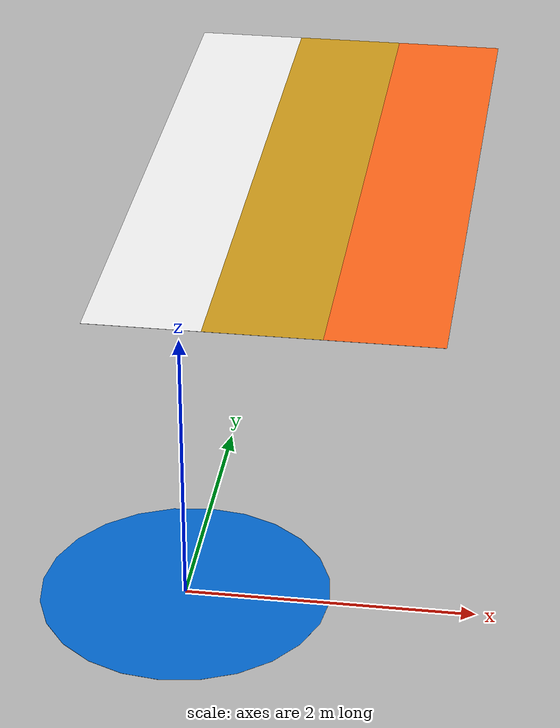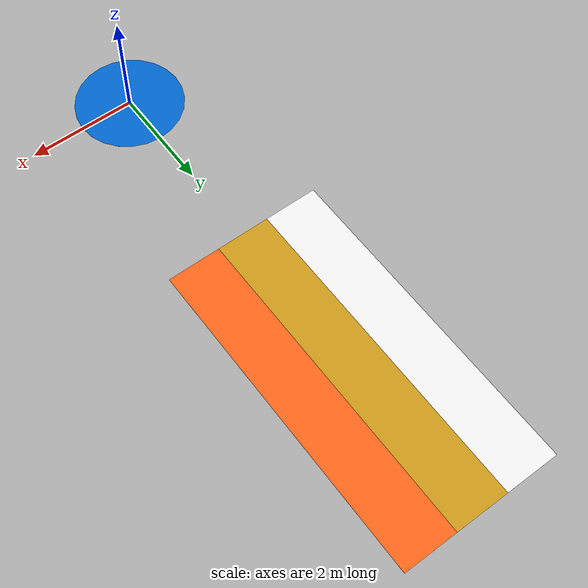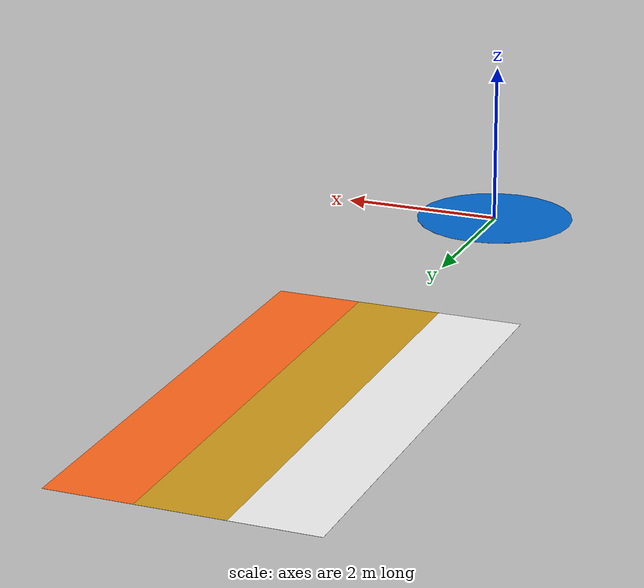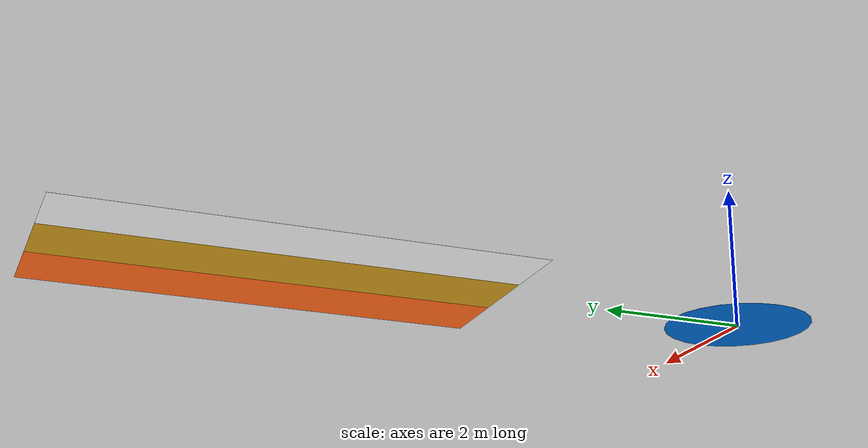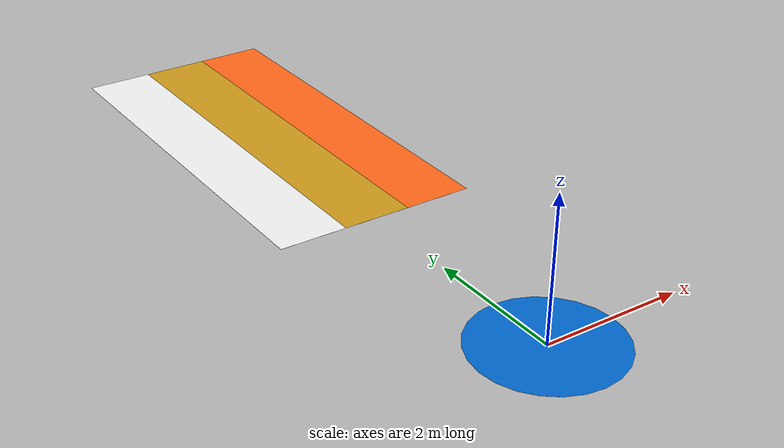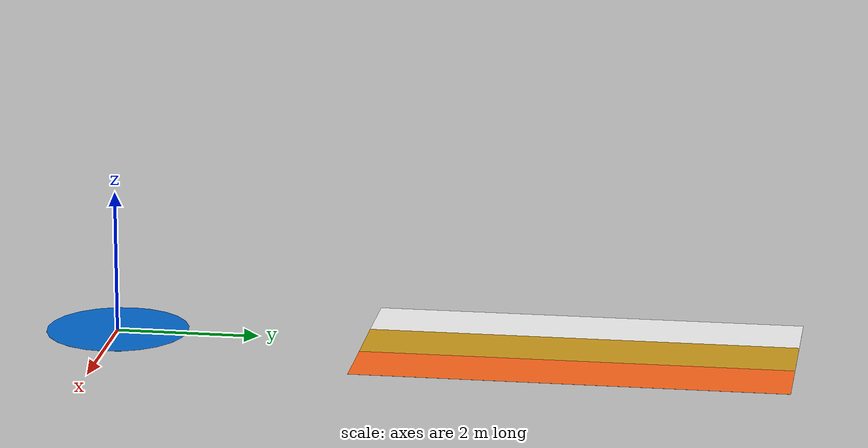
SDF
<?xml version="1.0" ?>
<sdf version="1.6">
  <model name="black_line_track">
    <static>true</static>
    <link name="track_link">
      <!-- Main outer loop -->

      <visual name="vertical_1_safety_yellow">
        <pose>0 6.5 0.01 0 0 1.5708</pose>
        <geometry>
          <box><size>6.0 1 0.001</size></box> <!-- Final vertical closure -->
        </geometry>
        <material>
          <ambient>0.8 0.6 0.1 1</ambient>
          <diffuse>0.8 0.6 0.1 1</diffuse>
        </material>
      </visual>

      <visual name="vertical_1_white">
        <pose>-1 6.5 0.01 0 0 1.5708</pose>
        <geometry>
          <box><size>6.0 1 0.001</size></box> <!-- Final vertical closure -->
        </geometry>
        <material>
          <ambient>0.95 0.95 0.95 1</ambient>
          <diffuse>0.95 0.95 0.95 1</diffuse>
        </material>
      </visual>

      <visual name="vertical_1_bright_orange">
        <pose>1 6.5 0.01 0 0 1.5708</pose>
        <geometry>
          <box><size>6.0 1 0.001</size></box> <!-- Final vertical closure -->
        </geometry>
        <material>
          <ambient>1.0 0.4 0.1 1</ambient>
          <diffuse>1.0 0.4 0.1 1</diffuse>
        </material>
      </visual>

      <visual name="circle">
        <pose>0 0 0.01 0 0 0</pose>
        <geometry>
          <cylinder>
            <radius>1.0</radius>  <!-- Half of your original box width (0.8/2) -->
            <length>0.001</length>    <!-- Same as your original box length -->
          </cylinder>
        </geometry>
        <material>
          <ambient>0.0 0.4 0.8 1</ambient>
          <diffuse>0.0 0.4 0.8 1</diffuse>
        </material>
      </visual>

    </link>
  </model>
</sdf>
